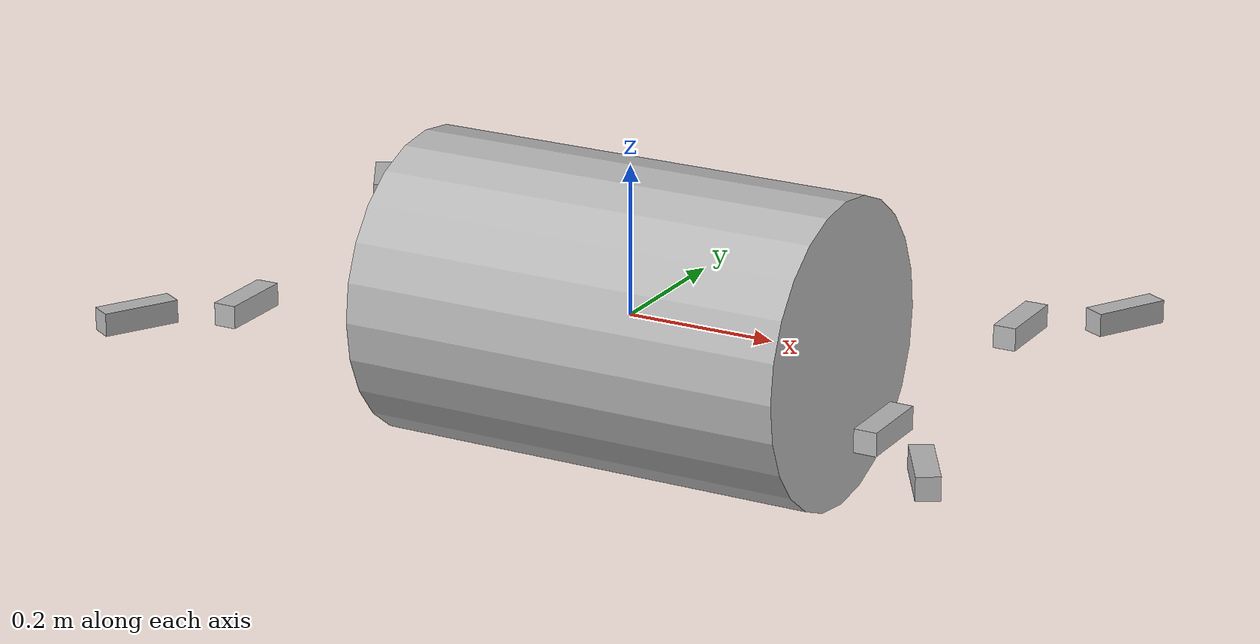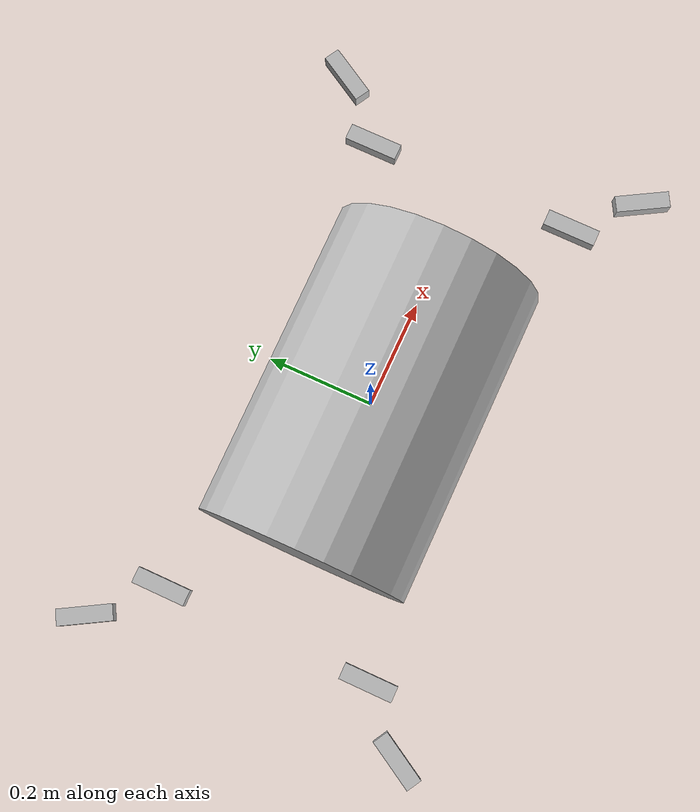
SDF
<?xml version="1.0"?>
<sdf version="1.6">
  <model name="cascade">
        <!-- Body -->
    <link name="base_link">
      <inertial>
        <mass>147.8671</mass>
        <inertia>
          <ixx>3.000000</ixx>
          <ixy>0</ixy>
          <ixz>0</ixz>
          <iyy>41.980233</iyy>
          <iyz>0</iyz>
          <izz>41.980233</izz>
        </inertia>
      </inertial>

      <collision name="main_body_buoyancy">
        <geometry>
          <box>
            <size>2 0.3 0.246445166667</size>
          </box>
        </geometry>
      </collision>

      <visual name="visual">
        <geometry>
        <cylinder>
            <radius>0.2</radius>
            <length>0.6</length>
          </cylinder>
        </geometry>
        <pose>0 0 0 0 1.5708 0</pose>
      </visual>

    </link>
    <link name="camera_link">
        <pose>0.35 0 0 0 0 0</pose>
        <inertial>
        <mass>0</mass>
      </inertial>
        <sensor name="depth_camera" type="depth_camera">
          <update_rate>30</update_rate>
          <topic>/sensors/camera/depth_map</topic>
          <camera>
            <image>
              <width>320</width>
              <height>240</height>
              <format>R_FLOAT32</format>
            </image>
            <clip>
              <near>0.1</near>
              <far>100.0</far>
            </clip>
          </camera>
          </sensor>
        <sensor name="camera" type="camera">
          <camera>
            <image>
              <width>320</width>
              <height>240</height>
            </image>
            <clip>
              <near>0.1</near>
              <far>100</far>
            </clip>
          </camera>
          <always_on>1</always_on>
          <update_rate>30</update_rate>
          <visualize>true</visualize>
          <topic>/sensors/camera/rgb</topic>
        </sensor>

        <sensor name="imu_sensor" type="imu">
            <update_rate>1000</update_rate>
            <topic>/sensors/imu</topic>
            <imu>
                <angular_velocity>
                    <x>true</x>
                    <y>true</y>
                    <z>true</z>
                </angular_velocity>
                <linear_acceleration>
                    <x>true</x>
                    <y>true</y>
                    <z>true</z>
                </linear_acceleration>
                <frame>camera_link</frame>
            </imu>
        </sensor>
    </link>

    <joint name="camera_joint" type="fixed">
      <pose>0 0 0 0 0 0</pose>
      <parent>base_link</parent>
      <child>camera_link</child>
  </joint>

    <!-- Propeller -->
    <link name="propeller_fro">
      <pose>0.55 -0.3 0 0 0 0.52359</pose>
      <inertial>
        <pose>0 0 0 0 0 0</pose>
        <mass>0.09</mass>
        <inertia>
          <ixx>0.000143971303</ixx>
          <ixy>0.000000000008</ixy>
          <ixz>-0.000000000224</ixz>
          <iyy>0.000140915448</iyy>
          <iyz>-0.000025236433</iyz>
          <izz>0.000033571862</izz>
        </inertia>
      </inertial>

      <collision name="collision">
        <geometry>
          <box>
            <size>0.03 0.1 0.03</size>
          </box>
        </geometry>
      </collision>

      <visual name= "visual">
        <pose>0 0 0 0 0 0</pose>
        <geometry>
          <box>
              <size>0.03 0.1 0.03 </size>
          </box>
        </geometry>
      </visual>

    </link>

    <joint name="propeller_fro_joint" type="revolute">
      <pose>0 0 0 0 0 0</pose>
      <parent>base_link</parent>
      <child>propeller_fro</child>
      <axis>
        <xyz>1 0 0</xyz>
        <limit>
          <lower>-1e+12</lower>
          <upper>1e+12</upper>
          <effort>-1</effort>
          <velocity>-1</velocity>
        </limit>
      </axis>
    </joint>

<link name="propeller_flo">
      <pose>0.55 0.3 0 0 0 -0.52359</pose>
      <inertial>
        <pose>0 0 0 0 0 0</pose>
        <mass>0.09</mass>
        <inertia>
          <ixx>0.000143971303</ixx>
          <ixy>0.000000000008</ixy>
          <ixz>-0.000000000224</ixz>
          <iyy>0.000140915448</iyy>
          <iyz>-0.000025236433</iyz>
          <izz>0.000033571862</izz>
        </inertia>
      </inertial>

      <collision name="collision">
        <geometry>
          <box>
            <size>0.03 0.1 0.03</size>
          </box>
        </geometry>
      </collision>

      <visual name= "visual">
        <pose>0 0 0 0 0 0</pose>
        <geometry>
          <box>
              <size>0.03 0.1 0.03 </size>
          </box>
        </geometry>
      </visual>

    </link>

    <joint name="propeller_flo_joint" type="revolute">
      <pose>0 0 0 0 0 0</pose>
      <parent>base_link</parent>
      <child>propeller_flo</child>
      <axis>
        <xyz>1 0 0</xyz>
        <limit>
          <lower>-1e+12</lower>
          <upper>1e+12</upper>
          <effort>-1</effort>
          <velocity>-1</velocity>
        </limit>
      </axis>
    </joint>

<link name="propeller_bro">
      <pose>-0.55 -0.3 0 0 0 2.618</pose>
      <inertial>
        <pose>0 0 0 0 0 0</pose>
        <mass>0.09</mass>
        <inertia>
          <ixx>0.000143971303</ixx>
          <ixy>0.000000000008</ixy>
          <ixz>-0.000000000224</ixz>
          <iyy>0.000140915448</iyy>
          <iyz>-0.000025236433</iyz>
          <izz>0.000033571862</izz>
        </inertia>
      </inertial>

      <collision name="collision">
        <geometry>
          <box>
            <size>0.03 0.1 0.03</size>
          </box>
        </geometry>
      </collision>

      <visual name= "visual">
        <pose>0 0 0 0 0 0</pose>
        <geometry>
          <box>
              <size>0.03 0.1 0.03 </size>
          </box>
        </geometry>
      </visual>

    </link>

    <joint name="propeller_bro_joint" type="revolute">
      <pose>0 0 0 0 0 0</pose>
      <parent>base_link</parent>
      <child>propeller_bro</child>
      <axis>
        <xyz>1 0 0</xyz>
        <limit>
          <lower>-1e+12</lower>
          <upper>1e+12</upper>
          <effort>-1</effort>
          <velocity>-1</velocity>
        </limit>
      </axis>
    </joint>

<link name="propeller_blo">
      <pose>-0.55 0.3 0 0 0 3.66519</pose>
      <inertial>
        <pose>0 0 0 0 0 0</pose>
        <mass>0.09</mass>
        <inertia>
          <ixx>0.000143971303</ixx>
          <ixy>0.000000000008</ixy>
          <ixz>-0.000000000224</ixz>
          <iyy>0.000140915448</iyy>
          <iyz>-0.000025236433</iyz>
          <izz>0.000033571862</izz>
        </inertia>
      </inertial>

      <collision name="collision">
        <geometry>
          <box>
            <size>0.03 0.1 0.03</size>
          </box>
        </geometry>
      </collision>

      <visual name= "visual">
        <pose>0 0 0 0 0 0</pose>
        <geometry>
          <box>
              <size>0.03 0.1 0.03 </size>
          </box>
        </geometry>
      </visual>

    </link>

    <joint name="propeller_blo_joint" type="revolute">
      <pose>0 0 0 0 0 0</pose>
      <parent>base_link</parent>
      <child>propeller_blo</child>
      <axis>
        <xyz>1 0 0</xyz>
        <limit>
          <lower>-1e+12</lower>
          <upper>1e+12</upper>
          <effort>-1</effort>
          <velocity>-1</velocity>
        </limit>
      </axis>
    </joint>

<link name="propeller_fri">
      <pose>0.45 -0.2 0 0 0 0</pose>
      <inertial>
        <pose>0 0 0 0 0 0</pose>
        <mass>0.09</mass>
        <inertia>
          <ixx>0.000143971303</ixx>
          <ixy>0.000000000008</ixy>
          <ixz>-0.000000000224</ixz>
          <iyy>0.000140915448</iyy>
          <iyz>-0.000025236433</iyz>
          <izz>0.000033571862</izz>
        </inertia>
      </inertial>

      <collision name="collision">
        <geometry>
          <box>
            <size>0.03 0.1 0.03</size>
          </box>
        </geometry>
      </collision>

      <visual name= "visual">
        <pose>0 0 0 0 0 0</pose>
        <geometry>
          <box>
              <size>0.03 0.1 0.03 </size>
          </box>
        </geometry>
      </visual>

    </link>

    <joint name="propeller_fri_joint" type="revolute">
      <pose>0 0 0 0 0 0</pose>
      <parent>base_link</parent>
      <child>propeller_fri</child>
      <axis>
        <xyz>0 0 1</xyz>
        <limit>
          <lower>-1e+12</lower>
          <upper>1e+12</upper>
          <effort>-1</effort>
          <velocity>-1</velocity>
        </limit>
      </axis>
    </joint>

<link name="propeller_fli">
      <pose>0.45 0.2 0 0 0 0</pose>
      <inertial>
        <pose>0 0 0 0 0 0</pose>
        <mass>0.09</mass>
        <inertia>
          <ixx>0.000143971303</ixx>
          <ixy>0.000000000008</ixy>
          <ixz>-0.000000000224</ixz>
          <iyy>0.000140915448</iyy>
          <iyz>-0.000025236433</iyz>
          <izz>0.000033571862</izz>
        </inertia>
      </inertial>

      <collision name="collision">
        <geometry>
          <box>
            <size>0.03 0.1 0.03</size>
          </box>
        </geometry>
      </collision>

      <visual name= "visual">
        <pose>0 0 0 0 0 0</pose>
        <geometry>
          <box>
              <size>0.03 0.1 0.03 </size>
          </box>
        </geometry>
      </visual>

    </link>

    <joint name="propeller_fli_joint" type="revolute">
      <pose>0 0 0 0 0 0</pose>
      <parent>base_link</parent>
      <child>propeller_fli</child>
      <axis>
        <xyz>0 0 1</xyz>
        <limit>
          <lower>-1e+12</lower>
          <upper>1e+12</upper>
          <effort>-1</effort>
          <velocity>-1</velocity>
        </limit>
      </axis>
    </joint>

<link name="propeller_bri">
      <pose>-0.45 -0.2 0 0 0 0</pose>
      <inertial>
        <pose>0 0 0 0 0 0</pose>
        <mass>0.09</mass>
        <inertia>
          <ixx>0.000143971303</ixx>
          <ixy>0.000000000008</ixy>
          <ixz>-0.000000000224</ixz>
          <iyy>0.000140915448</iyy>
          <iyz>-0.000025236433</iyz>
          <izz>0.000033571862</izz>
        </inertia>
      </inertial>

      <collision name="collision">
        <geometry>
          <box>
            <size>0.03 0.1 0.03</size>
          </box>
        </geometry>
      </collision>

      <visual name= "visual">
        <pose>0 0 0 0 0 0</pose>
        <geometry>
          <box>
              <size>0.03 0.1 0.03 </size>
          </box>
        </geometry>
      </visual>

    </link>

    <joint name="propeller_bri_joint" type="revolute">
      <pose>0 0 0 0 0 0</pose>
      <parent>base_link</parent>
      <child>propeller_bri</child>
      <axis>
        <xyz>0 0 1</xyz>
        <limit>
          <lower>-1e+12</lower>
          <upper>1e+12</upper>
          <effort>-1</effort>
          <velocity>-1</velocity>
        </limit>
      </axis>
    </joint>

<link name="propeller_bli">
      <pose>-0.45 0.2 0 0 0 0</pose>
      <inertial>
        <pose>0 0 0 0 0 0</pose>
        <mass>0.09</mass>
        <inertia>
          <ixx>0.000143971303</ixx>
          <ixy>0.000000000008</ixy>
          <ixz>-0.000000000224</ixz>
          <iyy>0.000140915448</iyy>
          <iyz>-0.000025236433</iyz>
          <izz>0.000033571862</izz>
        </inertia>
      </inertial>

      <collision name="collision">
        <geometry>
          <box>
            <size>0.03 0.1 0.03</size>
          </box>
        </geometry>
      </collision>

      <visual name= "visual">
        <pose>0 0 0 0 0 0</pose>
        <geometry>
          <box>
              <size>0.03 0.1 0.03 </size>
          </box>
        </geometry>
      </visual>

    </link>

    <joint name="propeller_bli_joint" type="revolute">
      <pose>0 0 0 0 0 0</pose>
      <parent>base_link</parent>
      <child>propeller_bli</child>
      <axis>
        <xyz>0 0 1</xyz>
        <limit>
          <lower>-1e+12</lower>
          <upper>1e+12</upper>
          <effort>-1</effort>
          <velocity>-1</velocity>
        </limit>
      </axis>
    </joint>
  </model>
</sdf>
